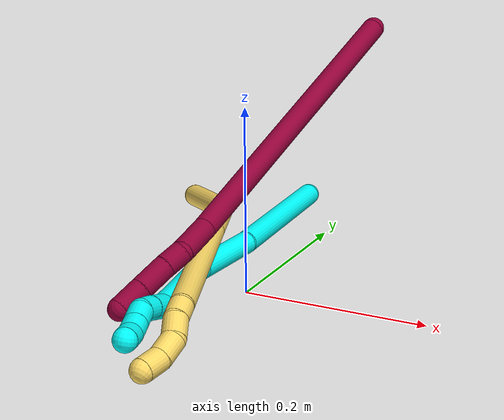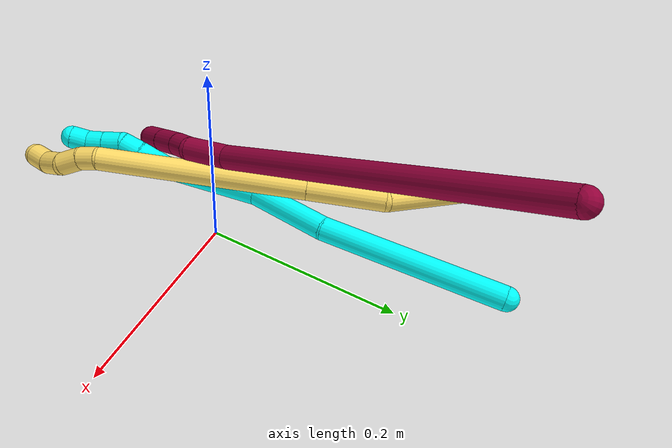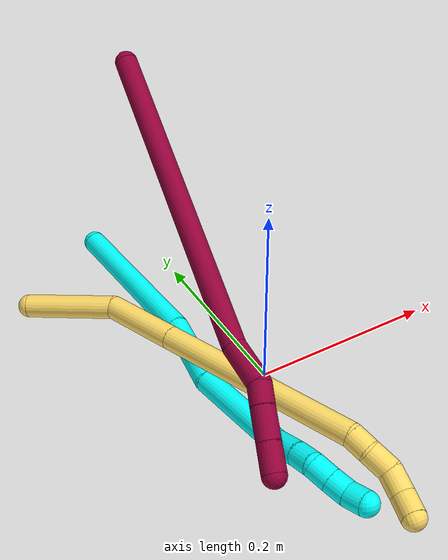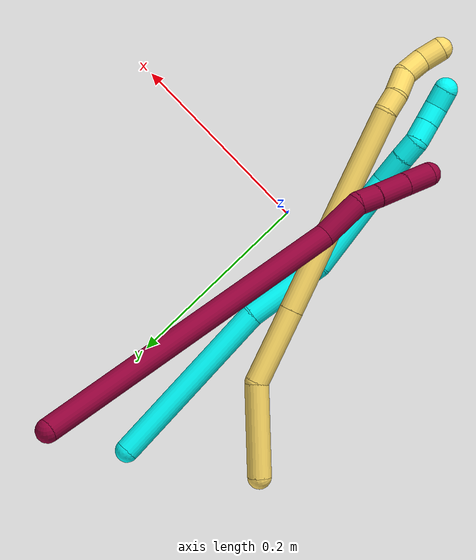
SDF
<sdf version="1.7">
 <world name="default">
  <model name="photoneo_s_sensor">
   <static>1</static>
   <pose>0 0 2 1.57079 1.57079 3.14159</pose>
   <link name="link">
    <inertial><mass>0.1</mass></inertial>
    <sensor name="sensor" type="depth">
     <update_rate>30</update_rate>
     <camera>
      <horizontal_fov>1.22</horizontal_fov>
      <image><width>1920</width><height>1200</height><format>B8G8R8</format></image>
      <clip><near>0.1</near><far>4</far></clip>
      <depth_camera><output>points</output></depth_camera>
     </camera>
     <plugin name="camera_plugin" filename="libgazebo_ros_depth_camera.so">
      <baseline>0.2</baseline>
      <alwaysOn>1</alwaysOn>
      <updateRate>0.0</updateRate>
      <cameraName>camera_ir</cameraName>
      <imageTopicName>/camera/color/image_raw</imageTopicName>
      <cameraInfoTopicName>/camera/color/camera_info</cameraInfoTopicName>
      <depthImageTopicName>/camera/depth/image_raw</depthImageTopicName>
      <depthImageCameraInfoTopicName>/camera/depth/camera_info</depthImageCameraInfoTopicName>
      <pointCloudTopicName>/camera/depth/points</pointCloudTopicName>
      <frameName>fr_optical</frameName>
      <pointCloudCutoff>0.1</pointCloudCutoff>
      <pointCloudCutoffMax>2.0</pointCloudCutoffMax>
      <distortionK1>0</distortionK1>
      <distortionK2>0</distortionK2>
      <distortionK3>0</distortionK3>
      <distortionT1>0</distortionT1>
      <distortionT2>0</distortionT2>
      <CxPrime>0</CxPrime>
      <Cx>0</Cx>
      <Cy>0</Cy>
      <focalLength>0</focalLength>
      <hackBaseline>0</hackBaseline>
     </plugin>
    </sensor>
   </link>
  </model>
  <model name="bin">
   <static>1</static>
   <link name="bottom">
    <collision name="collision-bottom">
     <pose>0 0 -0.01 0 -0 0</pose>
     <geometry><box><size>0.8 0.6 0.02</size></box></geometry>
     <surface>
      <friction><ode><mu>100</mu><mu2>100</mu2></ode></friction>
      <contact><collide_bitmask>65535</collide_bitmask></contact>
     </surface>
    </collision>
   </link>
   <link name="west_wall">
    <collision name="collision-west_wall">
     <pose>-0.41 0 0.1 0 -0 0</pose>
     <geometry><box><size>0.02 0.6 0.2</size></box></geometry>
     <surface>
      <friction><ode><mu>100</mu><mu2>100</mu2></ode></friction>
      <contact><collide_bitmask>65535</collide_bitmask></contact>
     </surface>
    </collision>
   </link>
   <link name="east_wall">
    <collision name="collision-east_wall">
     <pose>0.41 0 0.1 0 -0 0</pose>
     <geometry><box><size>0.02 0.6 0.2</size></box></geometry>
     <surface>
      <friction><ode><mu>100</mu><mu2>100</mu2></ode></friction>
      <contact><collide_bitmask>65535</collide_bitmask></contact>
     </surface>
    </collision>
   </link>
   <link name="south_wall">
    <collision name="collision-south_wall">
     <pose>0 -0.31 0.1 0 -0 0</pose>
     <geometry><box><size>0.8 0.02 0.2</size></box></geometry>
     <surface>
      <friction><ode><mu>100</mu><mu2>100</mu2></ode></friction>
      <contact><collide_bitmask>65535</collide_bitmask></contact>
     </surface>
    </collision>
   </link>
   <link name="north_wall">
    <collision name="collision-north_wall">
     <pose>0 0.31 0.1 0 -0 0</pose>
     <geometry><box><size>0.8 0.02 0.2</size></box></geometry>
     <surface>
      <friction><ode><mu>100</mu><mu2>100</mu2></ode></friction>
      <contact><collide_bitmask>65535</collide_bitmask></contact>
     </surface>
    </collision>
   </link>
  </model>
  <model name="3">
   <static>0</static>
   <link name="3">
    <collision name="collision-cylinder-e_1_1_4">
     <pose>0.005165 -0.090581 -0.026887 1.85934 0.054612 0.073163</pose>
     <geometry><cylinder><radius>0.0125</radius><length>0.189257</length></cylinder></geometry>
     <surface>
      <friction><ode><mu>1.16</mu><mu2>1.16</mu2><slip1>0</slip1><slip2>0</slip2></ode></friction>
      <contact><ode><kp>1e+06</kp><kd>1</kd><max_vel>0</max_vel><min_depth>0.001</min_depth></ode></contact>
     </surface>
    </collision>
    <visual name="visual-cylinder-e_1_1_4">
     <pose>0.005165 -0.090581 -0.026887 1.85934 0.054612 0.073163</pose>
     <geometry><cylinder><radius>0.0125</radius><length>0.189257</length></cylinder></geometry>
     <material><ambient>0.003922 1 0.996078 1</ambient></material>
    </visual>
    <collision name="collision-cylinder-e_2_4_5">
     <pose>0.004633 -0.221152 -0.06837 1.92077 -0.133042 -0.189897</pose>
     <geometry><cylinder><radius>0.0125</radius><length>0.085899</length></cylinder></geometry>
     <surface>
      <friction><ode><mu>1.16</mu><mu2>1.16</mu2><slip1>0</slip1><slip2>0</slip2></ode></friction>
      <contact><ode><kp>1e+06</kp><kd>1</kd><max_vel>0</max_vel><min_depth>0.001</min_depth></ode></contact>
     </surface>
    </collision>
    <visual name="visual-cylinder-e_2_4_5">
     <pose>0.004633 -0.221152 -0.06837 1.92077 -0.133042 -0.189897</pose>
     <geometry><cylinder><radius>0.0125</radius><length>0.085899</length></cylinder></geometry>
     <material><ambient>0.003922 1 0.996078 1</ambient></material>
    </visual>
    <collision name="collision-cylinder-e_3_5_6">
     <pose>0.006919 -0.312374 -0.098398 1.86336 0.148096 0.198982</pose>
     <geometry><cylinder><radius>0.0125</radius><length>0.108197</length></cylinder></geometry>
     <surface>
      <friction><ode><mu>1.16</mu><mu2>1.16</mu2><slip1>0</slip1><slip2>0</slip2></ode></friction>
      <contact><ode><kp>1e+06</kp><kd>1</kd><max_vel>0</max_vel><min_depth>0.001</min_depth></ode></contact>
     </surface>
    </collision>
    <visual name="visual-cylinder-e_3_5_6">
     <pose>0.006919 -0.312374 -0.098398 1.86336 0.148096 0.198982</pose>
     <geometry><cylinder><radius>0.0125</radius><length>0.108197</length></cylinder></geometry>
     <material><ambient>0.003922 1 0.996078 1</ambient></material>
    </visual>
    <collision name="collision-cylinder-e_4_6_7">
     <pose>0.016499 -0.379757 -0.113456 1.54765 0.098571 0.096319</pose>
     <geometry><cylinder><radius>0.0125</radius><length>0.032467</length></cylinder></geometry>
     <surface>
      <friction><ode><mu>1.16</mu><mu2>1.16</mu2><slip1>0</slip1><slip2>0</slip2></ode></friction>
      <contact><ode><kp>1e+06</kp><kd>1</kd><max_vel>0</max_vel><min_depth>0.001</min_depth></ode></contact>
     </surface>
    </collision>
    <visual name="visual-cylinder-e_4_6_7">
     <pose>0.016499 -0.379757 -0.113456 1.54765 0.098571 0.096319</pose>
     <geometry><cylinder><radius>0.0125</radius><length>0.032467</length></cylinder></geometry>
     <material><ambient>0.003922 1 0.996078 1</ambient></material>
    </visual>
    <collision name="collision-cylinder-e_5_7_8">
     <pose>0.01895 -0.407003 -0.113691 1.62563 0.076717 0.081039</pose>
     <geometry><cylinder><radius>0.0125</radius><length>0.02229</length></cylinder></geometry>
     <surface>
      <friction><ode><mu>1.16</mu><mu2>1.16</mu2><slip1>0</slip1><slip2>0</slip2></ode></friction>
      <contact><ode><kp>1e+06</kp><kd>1</kd><max_vel>0</max_vel><min_depth>0.001</min_depth></ode></contact>
     </surface>
    </collision>
    <visual name="visual-cylinder-e_5_7_8">
     <pose>0.01895 -0.407003 -0.113691 1.62563 0.076717 0.081039</pose>
     <geometry><cylinder><radius>0.0125</radius><length>0.02229</length></cylinder></geometry>
     <material><ambient>0.003922 1 0.996078 1</ambient></material>
    </visual>
    <collision name="collision-cylinder-e_6_8_9">
     <pose>0.022854 -0.427359 -0.119157 2.05379 0.283738 0.463858</pose>
     <geometry><cylinder><radius>0.0125</radius><length>0.021785</length></cylinder></geometry>
     <surface>
      <friction><ode><mu>1.16</mu><mu2>1.16</mu2><slip1>0</slip1><slip2>0</slip2></ode></friction>
      <contact><ode><kp>1e+06</kp><kd>1</kd><max_vel>0</max_vel><min_depth>0.001</min_depth></ode></contact>
     </surface>
    </collision>
    <visual name="visual-cylinder-e_6_8_9">
     <pose>0.022854 -0.427359 -0.119157 2.05379 0.283738 0.463858</pose>
     <geometry><cylinder><radius>0.0125</radius><length>0.021785</length></cylinder></geometry>
     <material><ambient>0.003922 1 0.996078 1</ambient></material>
    </visual>
    <collision name="collision-cylinder-e_7_9_10">
     <pose>0.028766 -0.44533 -0.128018 2.00175 0.290196 0.448362</pose>
     <geometry><cylinder><radius>0.0125</radius><length>0.020009</length></cylinder></geometry>
     <surface>
      <friction><ode><mu>1.16</mu><mu2>1.16</mu2><slip1>0</slip1><slip2>0</slip2></ode></friction>
      <contact><ode><kp>1e+06</kp><kd>1</kd><max_vel>0</max_vel><min_depth>0.001</min_depth></ode></contact>
     </surface>
    </collision>
    <visual name="visual-cylinder-e_7_9_10">
     <pose>0.028766 -0.44533 -0.128018 2.00175 0.290196 0.448362</pose>
     <geometry><cylinder><radius>0.0125</radius><length>0.020009</length></cylinder></geometry>
     <material><ambient>0.003922 1 0.996078 1</ambient></material>
    </visual>
    <collision name="collision-cylinder-e_8_10_2">
     <pose>0.034452 -0.463602 -0.133266 1.7001 0.284855 0.323649</pose>
     <geometry><cylinder><radius>0.0125</radius><length>0.020096</length></cylinder></geometry>
     <surface>
      <friction><ode><mu>1.16</mu><mu2>1.16</mu2><slip1>0</slip1><slip2>0</slip2></ode></friction>
      <contact><ode><kp>1e+06</kp><kd>1</kd><max_vel>0</max_vel><min_depth>0.001</min_depth></ode></contact>
     </surface>
    </collision>
    <visual name="visual-cylinder-e_8_10_2">
     <pose>0.034452 -0.463602 -0.133266 1.7001 0.284855 0.323649</pose>
     <geometry><cylinder><radius>0.0125</radius><length>0.020096</length></cylinder></geometry>
     <material><ambient>0.003922 1 0.996078 1</ambient></material>
    </visual>
    <collision name="collision-sphere-2">
     <pose>0.037276 -0.473165 -0.134509 0 -0 0</pose>
     <geometry><sphere><radius>0.0125</radius></sphere></geometry>
     <surface>
      <friction><ode><mu>1.16</mu><mu2>1.16</mu2><slip1>0</slip1><slip2>0</slip2></ode></friction>
      <contact><ode><kp>1e+06</kp><kd>1</kd><max_vel>0</max_vel><min_depth>0.001</min_depth></ode></contact>
     </surface>
    </collision>
    <visual name="visual-sphere-2">
     <pose>0.037276 -0.473165 -0.134509 0 -0 0</pose>
     <geometry><sphere><radius>0.0125</radius></sphere></geometry>
     <material><ambient>0.003922 1 0.996078 1</ambient></material>
    </visual>
    <collision name="collision-sphere-10">
     <pose>0.031628 -0.454039 -0.132022 0 -0 0</pose>
     <geometry><sphere><radius>0.0125</radius></sphere></geometry>
     <surface>
      <friction><ode><mu>1.16</mu><mu2>1.16</mu2><slip1>0</slip1><slip2>0</slip2></ode></friction>
      <contact><ode><kp>1e+06</kp><kd>1</kd><max_vel>0</max_vel><min_depth>0.001</min_depth></ode></contact>
     </surface>
    </collision>
    <visual name="visual-sphere-10">
     <pose>0.031628 -0.454039 -0.132022 0 -0 0</pose>
     <geometry><sphere><radius>0.0125</radius></sphere></geometry>
     <material><ambient>0.003922 1 0.996078 1</ambient></material>
    </visual>
    <collision name="collision-sphere-9">
     <pose>0.025903 -0.43662 -0.124013 0 -0 0</pose>
     <geometry><sphere><radius>0.0125</radius></sphere></geometry>
     <surface>
      <friction><ode><mu>1.16</mu><mu2>1.16</mu2><slip1>0</slip1><slip2>0</slip2></ode></friction>
      <contact><ode><kp>1e+06</kp><kd>1</kd><max_vel>0</max_vel><min_depth>0.001</min_depth></ode></contact>
     </surface>
    </collision>
    <visual name="visual-sphere-9">
     <pose>0.025903 -0.43662 -0.124013 0 -0 0</pose>
     <geometry><sphere><radius>0.0125</radius></sphere></geometry>
     <material><ambient>0.003922 1 0.996078 1</ambient></material>
    </visual>
    <collision name="collision-sphere-4">
     <pose>0.010331 -0.181163 -0.053774 0 -0 0</pose>
     <geometry><sphere><radius>0.0125</radius></sphere></geometry>
     <surface>
      <friction><ode><mu>1.16</mu><mu2>1.16</mu2><slip1>0</slip1><slip2>0</slip2></ode></friction>
      <contact><ode><kp>1e+06</kp><kd>1</kd><max_vel>0</max_vel><min_depth>0.001</min_depth></ode></contact>
     </surface>
    </collision>
    <visual name="visual-sphere-4">
     <pose>0.010331 -0.181163 -0.053774 0 -0 0</pose>
     <geometry><sphere><radius>0.0125</radius></sphere></geometry>
     <material><ambient>0.003922 1 0.996078 1</ambient></material>
    </visual>
    <collision name="collision-sphere-1">
     <geometry><sphere><radius>0.0125</radius></sphere></geometry>
     <surface>
      <friction><ode><mu>1.16</mu><mu2>1.16</mu2><slip1>0</slip1><slip2>0</slip2></ode></friction>
      <contact><ode><kp>1e+06</kp><kd>1</kd><max_vel>0</max_vel><min_depth>0.001</min_depth></ode></contact>
     </surface>
    </collision>
    <visual name="visual-sphere-1">
     <geometry><sphere><radius>0.0125</radius></sphere></geometry>
     <material><ambient>0.003922 1 0.996078 1</ambient></material>
    </visual>
    <collision name="collision-sphere-8">
     <pose>0.019805 -0.418099 -0.1143 0 -0 0</pose>
     <geometry><sphere><radius>0.0125</radius></sphere></geometry>
     <surface>
      <friction><ode><mu>1.16</mu><mu2>1.16</mu2><slip1>0</slip1><slip2>0</slip2></ode></friction>
      <contact><ode><kp>1e+06</kp><kd>1</kd><max_vel>0</max_vel><min_depth>0.001</min_depth></ode></contact>
     </surface>
    </collision>
    <visual name="visual-sphere-8">
     <pose>0.019805 -0.418099 -0.1143 0 -0 0</pose>
     <geometry><sphere><radius>0.0125</radius></sphere></geometry>
     <material><ambient>0.003922 1 0.996078 1</ambient></material>
    </visual>
    <collision name="collision-sphere-5">
     <pose>-0.001064 -0.261142 -0.082966 0 -0 0</pose>
     <geometry><sphere><radius>0.0125</radius></sphere></geometry>
     <surface>
      <friction><ode><mu>1.16</mu><mu2>1.16</mu2><slip1>0</slip1><slip2>0</slip2></ode></friction>
      <contact><ode><kp>1e+06</kp><kd>1</kd><max_vel>0</max_vel><min_depth>0.001</min_depth></ode></contact>
     </surface>
    </collision>
    <visual name="visual-sphere-5">
     <pose>-0.001064 -0.261142 -0.082966 0 -0 0</pose>
     <geometry><sphere><radius>0.0125</radius></sphere></geometry>
     <material><ambient>0.003922 1 0.996078 1</ambient></material>
    </visual>
    <collision name="collision-sphere-6">
     <pose>0.014901 -0.363607 -0.11383 0 -0 0</pose>
     <geometry><sphere><radius>0.0125</radius></sphere></geometry>
     <surface>
      <friction><ode><mu>1.16</mu><mu2>1.16</mu2><slip1>0</slip1><slip2>0</slip2></ode></friction>
      <contact><ode><kp>1e+06</kp><kd>1</kd><max_vel>0</max_vel><min_depth>0.001</min_depth></ode></contact>
     </surface>
    </collision>
    <visual name="visual-sphere-6">
     <pose>0.014901 -0.363607 -0.11383 0 -0 0</pose>
     <geometry><sphere><radius>0.0125</radius></sphere></geometry>
     <material><ambient>0.003922 1 0.996078 1</ambient></material>
    </visual>
    <collision name="collision-sphere-7">
     <pose>0.018096 -0.395907 -0.113082 0 -0 0</pose>
     <geometry><sphere><radius>0.0125</radius></sphere></geometry>
     <surface>
      <friction><ode><mu>1.16</mu><mu2>1.16</mu2><slip1>0</slip1><slip2>0</slip2></ode></friction>
      <contact><ode><kp>1e+06</kp><kd>1</kd><max_vel>0</max_vel><min_depth>0.001</min_depth></ode></contact>
     </surface>
    </collision>
    <visual name="visual-sphere-7">
     <pose>0.018096 -0.395907 -0.113082 0 -0 0</pose>
     <geometry><sphere><radius>0.0125</radius></sphere></geometry>
     <material><ambient>0.003922 1 0.996078 1</ambient></material>
    </visual>
    <inertial>
     <pose>0.009696 -0.237753 -0.071322 0 -0 0</pose>
     <mass>0.5</mass>
     <inertia>
      <ixx>0.000799</ixx>
      <ixy>0</ixy>
      <ixz>0</ixz>
      <iyy>-0.000189</iyy>
      <iyz>0</iyz>
      <izz>0.000662</izz>
     </inertia>
    </inertial>
   </link>
   <pose>-0.061464 0.286982 0.011497 -0.30737 0.052384 0.003288</pose>
  </model>
  <model name="5">
   <static>0</static>
   <link name="5">
    <collision name="collision-cylinder-e_1_1_4">
     <pose>0.01207 -0.043682 0.019634 1.14839 0.246895 0.16019</pose>
     <geometry><cylinder><radius>0.0125</radius><length>0.098778</length></cylinder></geometry>
     <surface>
      <friction><ode><mu>1.16</mu><mu2>1.16</mu2><slip1>0</slip1><slip2>0</slip2></ode></friction>
      <contact><ode><kp>1e+06</kp><kd>1</kd><max_vel>0</max_vel><min_depth>0.001</min_depth></ode></contact>
     </surface>
    </collision>
    <visual name="visual-cylinder-e_1_1_4">
     <pose>0.01207 -0.043682 0.019634 1.14839 0.246895 0.16019</pose>
     <geometry><cylinder><radius>0.0125</radius><length>0.098778</length></cylinder></geometry>
     <material><ambient>1 0.858824 0.4 1</ambient></material>
    </visual>
    <collision name="collision-cylinder-e_2_4_5">
     <pose>0.041386 -0.110382 0.068461 0.667664 0.434326 0.152745</pose>
     <geometry><cylinder><radius>0.0125</radius><length>0.081964</length></cylinder></geometry>
     <surface>
      <friction><ode><mu>1.16</mu><mu2>1.16</mu2><slip1>0</slip1><slip2>0</slip2></ode></friction>
      <contact><ode><kp>1e+06</kp><kd>1</kd><max_vel>0</max_vel><min_depth>0.001</min_depth></ode></contact>
     </surface>
    </collision>
    <visual name="visual-cylinder-e_2_4_5">
     <pose>0.041386 -0.110382 0.068461 0.667664 0.434326 0.152745</pose>
     <geometry><cylinder><radius>0.0125</radius><length>0.081964</length></cylinder></geometry>
     <material><ambient>1 0.858824 0.4 1</ambient></material>
    </visual>
    <collision name="collision-cylinder-e_3_5_6">
     <pose>0.105304 -0.196391 0.177369 0.668737 0.430633 0.151672</pose>
     <geometry><cylinder><radius>0.0125</radius><length>0.22361</length></cylinder></geometry>
     <surface>
      <friction><ode><mu>1.16</mu><mu2>1.16</mu2><slip1>0</slip1><slip2>0</slip2></ode></friction>
      <contact><ode><kp>1e+06</kp><kd>1</kd><max_vel>0</max_vel><min_depth>0.001</min_depth></ode></contact>
     </surface>
    </collision>
    <visual name="visual-cylinder-e_3_5_6">
     <pose>0.105304 -0.196391 0.177369 0.668737 0.430633 0.151672</pose>
     <geometry><cylinder><radius>0.0125</radius><length>0.22361</length></cylinder></geometry>
     <material><ambient>1 0.858824 0.4 1</ambient></material>
    </visual>
    <collision name="collision-cylinder-e_4_6_7">
     <pose>0.154668 -0.263645 0.266515 0.424608 0.254372 0.055114</pose>
     <geometry><cylinder><radius>0.0125</radius><length>0.021391</length></cylinder></geometry>
     <surface>
      <friction><ode><mu>1.16</mu><mu2>1.16</mu2><slip1>0</slip1><slip2>0</slip2></ode></friction>
      <contact><ode><kp>1e+06</kp><kd>1</kd><max_vel>0</max_vel><min_depth>0.001</min_depth></ode></contact>
     </surface>
    </collision>
    <visual name="visual-cylinder-e_4_6_7">
     <pose>0.154668 -0.263645 0.266515 0.424608 0.254372 0.055114</pose>
     <geometry><cylinder><radius>0.0125</radius><length>0.021391</length></cylinder></geometry>
     <material><ambient>1 0.858824 0.4 1</ambient></material>
    </visual>
    <collision name="collision-cylinder-e_5_7_8">
     <pose>0.157402 -0.273589 0.287267 0.464992 0.003341 0.000791</pose>
     <geometry><cylinder><radius>0.0125</radius><length>0.02533</length></cylinder></geometry>
     <surface>
      <friction><ode><mu>1.16</mu><mu2>1.16</mu2><slip1>0</slip1><slip2>0</slip2></ode></friction>
      <contact><ode><kp>1e+06</kp><kd>1</kd><max_vel>0</max_vel><min_depth>0.001</min_depth></ode></contact>
     </surface>
    </collision>
    <visual name="visual-cylinder-e_5_7_8">
     <pose>0.157402 -0.273589 0.287267 0.464992 0.003341 0.000791</pose>
     <geometry><cylinder><radius>0.0125</radius><length>0.02533</length></cylinder></geometry>
     <material><ambient>1 0.858824 0.4 1</ambient></material>
    </visual>
    <collision name="collision-cylinder-e_6_8_9">
     <pose>0.160051 -0.280106 0.310799 0.068546 0.209872 0.007222</pose>
     <geometry><cylinder><radius>0.0125</radius><length>0.02503</length></cylinder></geometry>
     <surface>
      <friction><ode><mu>1.16</mu><mu2>1.16</mu2><slip1>0</slip1><slip2>0</slip2></ode></friction>
      <contact><ode><kp>1e+06</kp><kd>1</kd><max_vel>0</max_vel><min_depth>0.001</min_depth></ode></contact>
     </surface>
    </collision>
    <visual name="visual-cylinder-e_6_8_9">
     <pose>0.160051 -0.280106 0.310799 0.068546 0.209872 0.007222</pose>
     <geometry><cylinder><radius>0.0125</radius><length>0.02503</length></cylinder></geometry>
     <material><ambient>1 0.858824 0.4 1</ambient></material>
    </visual>
    <collision name="collision-cylinder-e_7_9_2">
     <pose>0.168368 -0.280922 0.333507 -0.002145 0.498185 -0.000546</pose>
     <geometry><cylinder><radius>0.0125</radius><length>0.023896</length></cylinder></geometry>
     <surface>
      <friction><ode><mu>1.16</mu><mu2>1.16</mu2><slip1>0</slip1><slip2>0</slip2></ode></friction>
      <contact><ode><kp>1e+06</kp><kd>1</kd><max_vel>0</max_vel><min_depth>0.001</min_depth></ode></contact>
     </surface>
    </collision>
    <visual name="visual-cylinder-e_7_9_2">
     <pose>0.168368 -0.280922 0.333507 -0.002145 0.498185 -0.000546</pose>
     <geometry><cylinder><radius>0.0125</radius><length>0.023896</length></cylinder></geometry>
     <material><ambient>1 0.858824 0.4 1</ambient></material>
    </visual>
    <collision name="collision-sphere-2">
     <pose>0.174077 -0.280899 0.344003 0 -0 0</pose>
     <geometry><sphere><radius>0.0125</radius></sphere></geometry>
     <surface>
      <friction><ode><mu>1.16</mu><mu2>1.16</mu2><slip1>0</slip1><slip2>0</slip2></ode></friction>
      <contact><ode><kp>1e+06</kp><kd>1</kd><max_vel>0</max_vel><min_depth>0.001</min_depth></ode></contact>
     </surface>
    </collision>
    <visual name="visual-sphere-2">
     <pose>0.174077 -0.280899 0.344003 0 -0 0</pose>
     <geometry><sphere><radius>0.0125</radius></sphere></geometry>
     <material><ambient>1 0.858824 0.4 1</ambient></material>
    </visual>
    <collision name="collision-sphere-9">
     <pose>0.162658 -0.280944 0.323011 0 -0 0</pose>
     <geometry><sphere><radius>0.0125</radius></sphere></geometry>
     <surface>
      <friction><ode><mu>1.16</mu><mu2>1.16</mu2><slip1>0</slip1><slip2>0</slip2></ode></friction>
      <contact><ode><kp>1e+06</kp><kd>1</kd><max_vel>0</max_vel><min_depth>0.001</min_depth></ode></contact>
     </surface>
    </collision>
    <visual name="visual-sphere-9">
     <pose>0.162658 -0.280944 0.323011 0 -0 0</pose>
     <geometry><sphere><radius>0.0125</radius></sphere></geometry>
     <material><ambient>1 0.858824 0.4 1</ambient></material>
    </visual>
    <collision name="collision-sphere-4">
     <pose>0.024141 -0.087364 0.039267 0 -0 0</pose>
     <geometry><sphere><radius>0.0125</radius></sphere></geometry>
     <surface>
      <friction><ode><mu>1.16</mu><mu2>1.16</mu2><slip1>0</slip1><slip2>0</slip2></ode></friction>
      <contact><ode><kp>1e+06</kp><kd>1</kd><max_vel>0</max_vel><min_depth>0.001</min_depth></ode></contact>
     </surface>
    </collision>
    <visual name="visual-sphere-4">
     <pose>0.024141 -0.087364 0.039267 0 -0 0</pose>
     <geometry><sphere><radius>0.0125</radius></sphere></geometry>
     <material><ambient>1 0.858824 0.4 1</ambient></material>
    </visual>
    <collision name="collision-sphere-1">
     <geometry><sphere><radius>0.0125</radius></sphere></geometry>
     <surface>
      <friction><ode><mu>1.16</mu><mu2>1.16</mu2><slip1>0</slip1><slip2>0</slip2></ode></friction>
      <contact><ode><kp>1e+06</kp><kd>1</kd><max_vel>0</max_vel><min_depth>0.001</min_depth></ode></contact>
     </surface>
    </collision>
    <visual name="visual-sphere-1">
     <geometry><sphere><radius>0.0125</radius></sphere></geometry>
     <material><ambient>1 0.858824 0.4 1</ambient></material>
    </visual>
    <collision name="collision-sphere-8">
     <pose>0.157444 -0.279268 0.298588 0 -0 0</pose>
     <geometry><sphere><radius>0.0125</radius></sphere></geometry>
     <surface>
      <friction><ode><mu>1.16</mu><mu2>1.16</mu2><slip1>0</slip1><slip2>0</slip2></ode></friction>
      <contact><ode><kp>1e+06</kp><kd>1</kd><max_vel>0</max_vel><min_depth>0.001</min_depth></ode></contact>
     </surface>
    </collision>
    <visual name="visual-sphere-8">
     <pose>0.157444 -0.279268 0.298588 0 -0 0</pose>
     <geometry><sphere><radius>0.0125</radius></sphere></geometry>
     <material><ambient>1 0.858824 0.4 1</ambient></material>
    </visual>
    <collision name="collision-sphere-5">
     <pose>0.058631 -0.1334 0.097655 0 -0 0</pose>
     <geometry><sphere><radius>0.0125</radius></sphere></geometry>
     <surface>
      <friction><ode><mu>1.16</mu><mu2>1.16</mu2><slip1>0</slip1><slip2>0</slip2></ode></friction>
      <contact><ode><kp>1e+06</kp><kd>1</kd><max_vel>0</max_vel><min_depth>0.001</min_depth></ode></contact>
     </surface>
    </collision>
    <visual name="visual-sphere-5">
     <pose>0.058631 -0.1334 0.097655 0 -0 0</pose>
     <geometry><sphere><radius>0.0125</radius></sphere></geometry>
     <material><ambient>1 0.858824 0.4 1</ambient></material>
    </visual>
    <collision name="collision-sphere-6">
     <pose>0.151976 -0.259381 0.257083 0 -0 0</pose>
     <geometry><sphere><radius>0.0125</radius></sphere></geometry>
     <surface>
      <friction><ode><mu>1.16</mu><mu2>1.16</mu2><slip1>0</slip1><slip2>0</slip2></ode></friction>
      <contact><ode><kp>1e+06</kp><kd>1</kd><max_vel>0</max_vel><min_depth>0.001</min_depth></ode></contact>
     </surface>
    </collision>
    <visual name="visual-sphere-6">
     <pose>0.151976 -0.259381 0.257083 0 -0 0</pose>
     <geometry><sphere><radius>0.0125</radius></sphere></geometry>
     <material><ambient>1 0.858824 0.4 1</ambient></material>
    </visual>
    <collision name="collision-sphere-7">
     <pose>0.157359 -0.267909 0.275947 0 -0 0</pose>
     <geometry><sphere><radius>0.0125</radius></sphere></geometry>
     <surface>
      <friction><ode><mu>1.16</mu><mu2>1.16</mu2><slip1>0</slip1><slip2>0</slip2></ode></friction>
      <contact><ode><kp>1e+06</kp><kd>1</kd><max_vel>0</max_vel><min_depth>0.001</min_depth></ode></contact>
     </surface>
    </collision>
    <visual name="visual-sphere-7">
     <pose>0.157359 -0.267909 0.275947 0 -0 0</pose>
     <geometry><sphere><radius>0.0125</radius></sphere></geometry>
     <material><ambient>1 0.858824 0.4 1</ambient></material>
    </visual>
    <inertial>
     <pose>0.086913 -0.167142 0.151877 0 -0 0</pose>
     <mass>0.5</mass>
     <inertia>
      <ixx>0.00114</ixx>
      <ixy>0</ixy>
      <ixz>0</ixz>
      <iyy>0.000978</iyy>
      <iyz>0</iyz>
      <izz>0.000225</izz>
     </inertia>
    </inertial>
   </link>
   <pose>-0.175266 0.208028 0.017771 -2.78355 -0.887347 -2.10196</pose>
  </model>
  <model name="8">
   <static>0</static>
   <link name="8">
    <collision name="collision-cylinder-e_1_1_4">
     <pose>-0.003284 -0.180818 0.008854 1.52187 -0.018137 -0.017271</pose>
     <geometry><cylinder><radius>0.0125</radius><length>0.362128</length></cylinder></geometry>
     <surface>
      <friction><ode><mu>1.16</mu><mu2>1.16</mu2><slip1>0</slip1><slip2>0</slip2></ode></friction>
      <contact><ode><kp>1e+06</kp><kd>1</kd><max_vel>0</max_vel><min_depth>0.001</min_depth></ode></contact>
     </surface>
    </collision>
    <visual name="visual-cylinder-e_1_1_4">
     <pose>-0.003284 -0.180818 0.008854 1.52187 -0.018137 -0.017271</pose>
     <geometry><cylinder><radius>0.0125</radius><length>0.362128</length></cylinder></geometry>
     <material><ambient>0.584314 0 0.227451 1</ambient></material>
    </visual>
    <collision name="collision-cylinder-e_2_4_5">
     <pose>-0.008071 -0.38461 0.025083 1.26017 -0.06223 -0.045388</pose>
     <geometry><cylinder><radius>0.0125</radius><length>0.048353</length></cylinder></geometry>
     <surface>
      <friction><ode><mu>1.16</mu><mu2>1.16</mu2><slip1>0</slip1><slip2>0</slip2></ode></friction>
      <contact><ode><kp>1e+06</kp><kd>1</kd><max_vel>0</max_vel><min_depth>0.001</min_depth></ode></contact>
     </surface>
    </collision>
    <visual name="visual-cylinder-e_2_4_5">
     <pose>-0.008071 -0.38461 0.025083 1.26017 -0.06223 -0.045388</pose>
     <geometry><cylinder><radius>0.0125</radius><length>0.048353</length></cylinder></geometry>
     <material><ambient>0.584314 0 0.227451 1</ambient></material>
    </visual>
    <collision name="collision-cylinder-e_3_5_6">
     <pose>-0.011659 -0.419294 0.031172 1.68026 -0.175171 -0.195355</pose>
     <geometry><cylinder><radius>0.0125</radius><length>0.023923</length></cylinder></geometry>
     <surface>
      <friction><ode><mu>1.16</mu><mu2>1.16</mu2><slip1>0</slip1><slip2>0</slip2></ode></friction>
      <contact><ode><kp>1e+06</kp><kd>1</kd><max_vel>0</max_vel><min_depth>0.001</min_depth></ode></contact>
     </surface>
    </collision>
    <visual name="visual-cylinder-e_3_5_6">
     <pose>-0.011659 -0.419294 0.031172 1.68026 -0.175171 -0.195355</pose>
     <geometry><cylinder><radius>0.0125</radius><length>0.023923</length></cylinder></geometry>
     <material><ambient>0.584314 0 0.227451 1</ambient></material>
    </visual>
    <collision name="collision-cylinder-e_4_6_7">
     <pose>-0.015819 -0.448169 0.027944 1.68336 -0.119508 -0.133739</pose>
     <geometry><cylinder><radius>0.0125</radius><length>0.034802</length></cylinder></geometry>
     <surface>
      <friction><ode><mu>1.16</mu><mu2>1.16</mu2><slip1>0</slip1><slip2>0</slip2></ode></friction>
      <contact><ode><kp>1e+06</kp><kd>1</kd><max_vel>0</max_vel><min_depth>0.001</min_depth></ode></contact>
     </surface>
    </collision>
    <visual name="visual-cylinder-e_4_6_7">
     <pose>-0.015819 -0.448169 0.027944 1.68336 -0.119508 -0.133739</pose>
     <geometry><cylinder><radius>0.0125</radius><length>0.034802</length></cylinder></geometry>
     <material><ambient>0.584314 0 0.227451 1</ambient></material>
    </visual>
    <collision name="collision-cylinder-e_5_7_2">
     <pose>-0.019678 -0.480521 0.024185 1.68999 -0.116201 -0.130908</pose>
     <geometry><cylinder><radius>0.0125</radius><length>0.030793</length></cylinder></geometry>
     <surface>
      <friction><ode><mu>1.16</mu><mu2>1.16</mu2><slip1>0</slip1><slip2>0</slip2></ode></friction>
      <contact><ode><kp>1e+06</kp><kd>1</kd><max_vel>0</max_vel><min_depth>0.001</min_depth></ode></contact>
     </surface>
    </collision>
    <visual name="visual-cylinder-e_5_7_2">
     <pose>-0.019678 -0.480521 0.024185 1.68999 -0.116201 -0.130908</pose>
     <geometry><cylinder><radius>0.0125</radius><length>0.030793</length></cylinder></geometry>
     <material><ambient>0.584314 0 0.227451 1</ambient></material>
    </visual>
    <collision name="collision-sphere-2">
     <pose>-0.021463 -0.495705 0.022367 0 -0 0</pose>
     <geometry><sphere><radius>0.0125</radius></sphere></geometry>
     <surface>
      <friction><ode><mu>1.16</mu><mu2>1.16</mu2><slip1>0</slip1><slip2>0</slip2></ode></friction>
      <contact><ode><kp>1e+06</kp><kd>1</kd><max_vel>0</max_vel><min_depth>0.001</min_depth></ode></contact>
     </surface>
    </collision>
    <visual name="visual-sphere-2">
     <pose>-0.021463 -0.495705 0.022367 0 -0 0</pose>
     <geometry><sphere><radius>0.0125</radius></sphere></geometry>
     <material><ambient>0.584314 0 0.227451 1</ambient></material>
    </visual>
    <collision name="collision-sphere-7">
     <pose>-0.017893 -0.465337 0.026004 0 -0 0</pose>
     <geometry><sphere><radius>0.0125</radius></sphere></geometry>
     <surface>
      <friction><ode><mu>1.16</mu><mu2>1.16</mu2><slip1>0</slip1><slip2>0</slip2></ode></friction>
      <contact><ode><kp>1e+06</kp><kd>1</kd><max_vel>0</max_vel><min_depth>0.001</min_depth></ode></contact>
     </surface>
    </collision>
    <visual name="visual-sphere-7">
     <pose>-0.017893 -0.465337 0.026004 0 -0 0</pose>
     <geometry><sphere><radius>0.0125</radius></sphere></geometry>
     <material><ambient>0.584314 0 0.227451 1</ambient></material>
    </visual>
    <collision name="collision-sphere-6">
     <pose>-0.013744 -0.431002 0.029885 0 -0 0</pose>
     <geometry><sphere><radius>0.0125</radius></sphere></geometry>
     <surface>
      <friction><ode><mu>1.16</mu><mu2>1.16</mu2><slip1>0</slip1><slip2>0</slip2></ode></friction>
      <contact><ode><kp>1e+06</kp><kd>1</kd><max_vel>0</max_vel><min_depth>0.001</min_depth></ode></contact>
     </surface>
    </collision>
    <visual name="visual-sphere-6">
     <pose>-0.013744 -0.431002 0.029885 0 -0 0</pose>
     <geometry><sphere><radius>0.0125</radius></sphere></geometry>
     <material><ambient>0.584314 0 0.227451 1</ambient></material>
    </visual>
    <collision name="collision-sphere-5">
     <pose>-0.009575 -0.407585 0.032459 0 -0 0</pose>
     <geometry><sphere><radius>0.0125</radius></sphere></geometry>
     <surface>
      <friction><ode><mu>1.16</mu><mu2>1.16</mu2><slip1>0</slip1><slip2>0</slip2></ode></friction>
      <contact><ode><kp>1e+06</kp><kd>1</kd><max_vel>0</max_vel><min_depth>0.001</min_depth></ode></contact>
     </surface>
    </collision>
    <visual name="visual-sphere-5">
     <pose>-0.009575 -0.407585 0.032459 0 -0 0</pose>
     <geometry><sphere><radius>0.0125</radius></sphere></geometry>
     <material><ambient>0.584314 0 0.227451 1</ambient></material>
    </visual>
    <collision name="collision-sphere-1">
     <geometry><sphere><radius>0.0125</radius></sphere></geometry>
     <surface>
      <friction><ode><mu>1.16</mu><mu2>1.16</mu2><slip1>0</slip1><slip2>0</slip2></ode></friction>
      <contact><ode><kp>1e+06</kp><kd>1</kd><max_vel>0</max_vel><min_depth>0.001</min_depth></ode></contact>
     </surface>
    </collision>
    <visual name="visual-sphere-1">
     <geometry><sphere><radius>0.0125</radius></sphere></geometry>
     <material><ambient>0.584314 0 0.227451 1</ambient></material>
    </visual>
    <collision name="collision-sphere-4">
     <pose>-0.006568 -0.361635 0.017708 0 -0 0</pose>
     <geometry><sphere><radius>0.0125</radius></sphere></geometry>
     <surface>
      <friction><ode><mu>1.16</mu><mu2>1.16</mu2><slip1>0</slip1><slip2>0</slip2></ode></friction>
      <contact><ode><kp>1e+06</kp><kd>1</kd><max_vel>0</max_vel><min_depth>0.001</min_depth></ode></contact>
     </surface>
    </collision>
    <visual name="visual-sphere-4">
     <pose>-0.006568 -0.361635 0.017708 0 -0 0</pose>
     <geometry><sphere><radius>0.0125</radius></sphere></geometry>
     <material><ambient>0.584314 0 0.227451 1</ambient></material>
    </visual>
    <inertial>
     <pose>-0.00603 -0.249002 0.013764 0 -0 0</pose>
     <mass>0.5</mass>
     <inertia><ixx>0.00392</ixx><ixy>0</ixy><ixz>0</ixz><iyy>8.9e-05</iyy><iyz>0</iyz><izz>0.004063</izz></inertia>
    </inertial>
   </link>
   <pose>0.008475 0.314593 0.219495 0.633677 0.678199 0.251673</pose>
  </model>
 </world>
</sdf>
